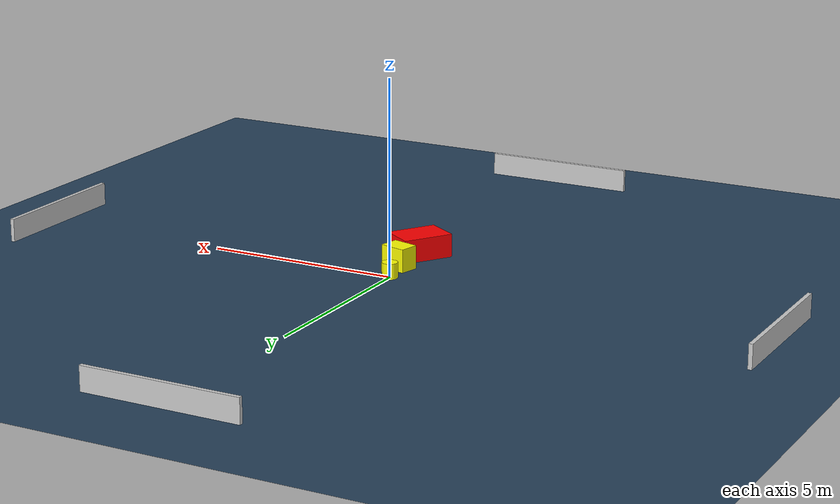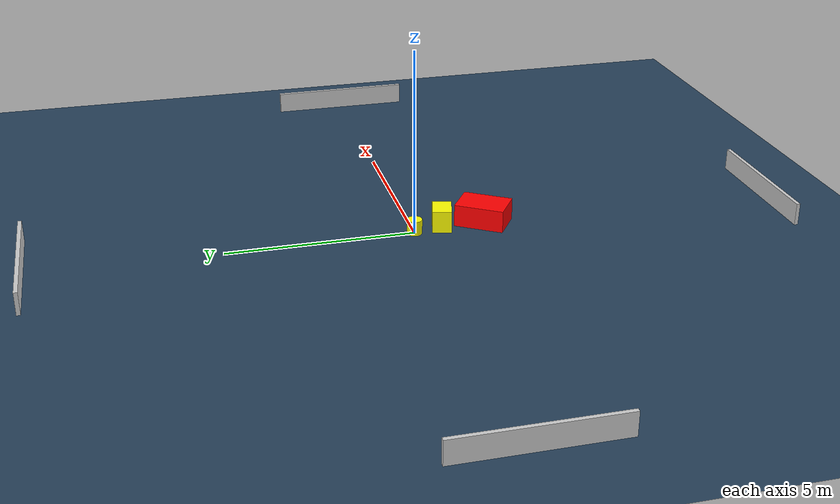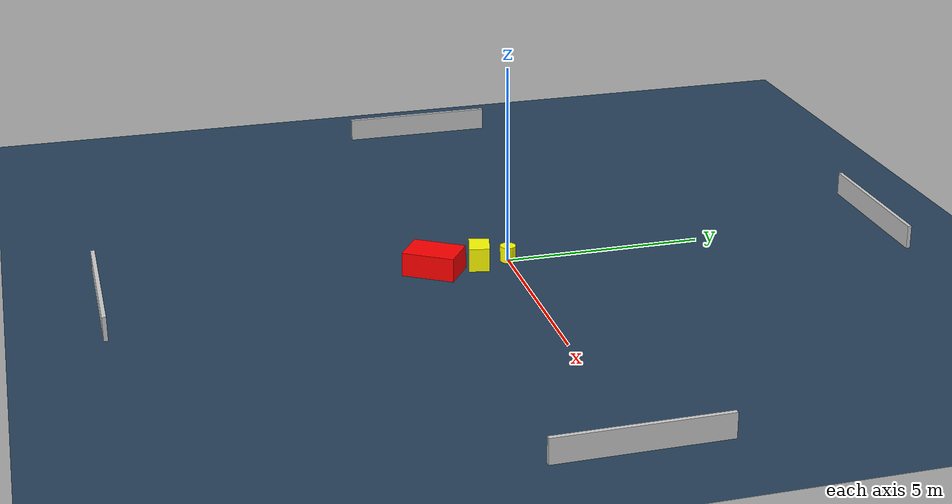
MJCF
<?xml version="1.0" ?>
<mujoco model="generated_environment">
  <option timestep="0.01" integrator="RK4" cone="elliptic"/>
  <default>
    <geom density="1"/>
  </default>
  <asset>
    <texture builtin="gradient" height="3072" name="skybox" rgb1="0.3 0.5 0.7" rgb2="0 0 0" type="skybox" width="512"/>
    <texture builtin="checker" height="300" name="groundplane" rgb1="0.2 0.3 0.4" rgb2="0.1 0.2 0.3" type="2d" width="300"/>
    <material name="groundplane" reflectance="0.2" texrepeat="5 5" texture="groundplane"/>
  </asset>
  <worldbody>
    <light dir="0 0 -1" directional="true" pos="0 0 1.5"/>
    <geom condim="3" friction="0.5 0.005 0.001" material="groundplane" name="floor" pos="0 0 0" size="0 0 0.05" type="plane"/>
    <body name="walls">
      <geom name="wall_1" condim="4" pos="-10.0 0.0 0.3" rgba="0.800000011920929 0.800000011920929 0.800000011920929 1.0" size="0.05 2.0 0.3" type="box"/>
      <geom name="wall_2" condim="4" pos="10.0 0.0 0.3" rgba="0.800000011920929 0.800000011920929 0.800000011920929 1.0" size="0.05 2.0 0.3" type="box"/>
      <geom name="wall_3" condim="4" pos="0.0 -10.0 0.3" rgba="0.800000011920929 0.800000011920929 0.800000011920929 1.0" size="2.0 0.05 0.3" type="box"/>
      <geom name="wall_4" condim="4" pos="0.0 10.0 0.3" rgba="0.800000011920929 0.800000011920929 0.800000011920929 1.0" size="2.0 0.05 0.3" type="box"/>
    </body>
    <body name="robot">
      <joint name="joint_x" type="slide" pos="0 0 0" axis="1 0 0"/>
      <joint name="joint_y" type="slide" pos="0 0 0" axis="0 1 0"/>
      <geom name="robot" type="cylinder" pos="0.0 0.0 0.2" size="0.2 0.2 0.0" mass="5.0" friction="1.0 0.005 0.0001" condim="4" rgba="1.0 1.0 0.0 1.0"/>
    </body>
    <body name="obstacle_1_movable">
      <geom name="obstacle_1_movable" condim="4" pos="0.16349481868338078 -0.7835672499177262 0.3" euler="0 0 165.84969689869277" friction="0.0 0.005 0.001" rgba="1.0 1.0 0.0 1.0" size="0.344575140189443 0.25587356451856885 0.3" type="box" mass="0.1"/>
      <joint type="free"/>
    </body>
    <body name="obstacle_2_static">
      <geom name="obstacle_2_static" condim="4" pos="0.19447163290202105 -1.9393124506866928 0.3" euler="0 0 236.6685581950079" friction="0.0 0.005 0.001" rgba="1.0 0.0 0.0 1.0" size="0.6660460014234251 0.46404936849198114 0.3" type="box"/>
    </body>
  </worldbody>
  <actuator>
    <motor name="actuator_x" joint="joint_x" gear="1" ctrlrange="-1 1"/>
    <motor name="actuator_y" joint="joint_y" gear="1" ctrlrange="-1 1"/>
  </actuator>
</mujoco>
